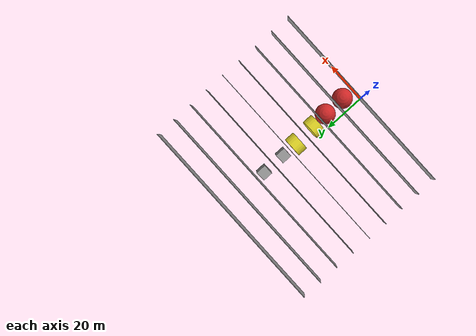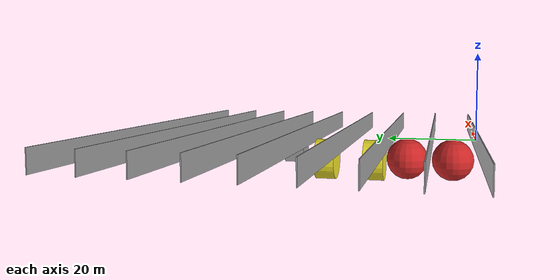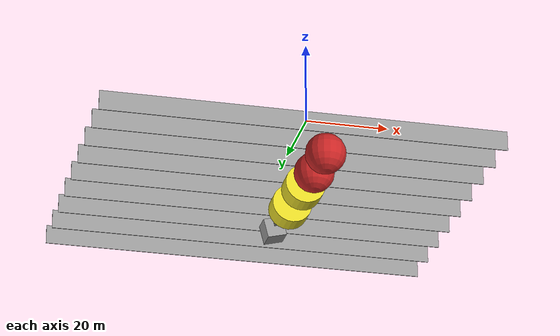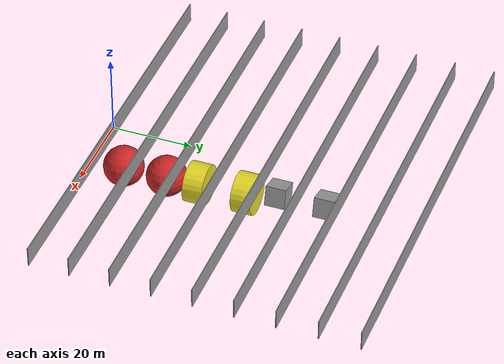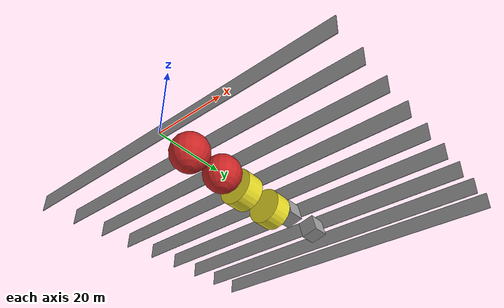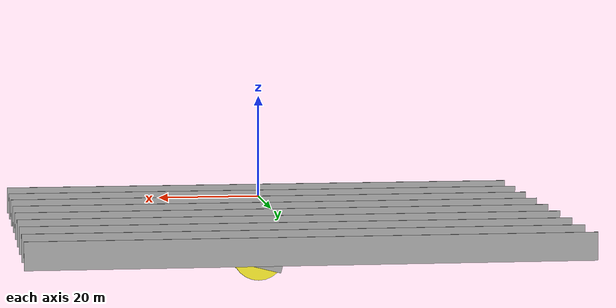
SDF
<?xml version='1.0'?>
<sdf version='1.7'>
  <model name='terrian'>
    <link name='link_1'>
      <pose>0 0 0 0 -0 0</pose>
      <gravity>1</gravity>
      <self_collide>0</self_collide>
      <kinematic>0</kinematic>
      <enable_wind>0</enable_wind>
      <inertial>
        <mass>1</mass>
        <pose>0 0 0 0 -0 0</pose>
        <inertia>
          <ixx>1</ixx>
          <ixy>0</ixy>
          <ixz>0</ixz>
          <iyy>1</iyy>
          <iyz>0</iyz>
          <izz>1</izz>
        </inertia>
      </inertial>
      <visual name='ModelPreview_1::link_1::visual_6'>
        <pose>0 60 0 0 -0 0</pose>
        <geometry>
          <box>
            <size>100 0.2 5</size>
          </box>
        </geometry>
        <material>
          <lighting>1</lighting>
          <script>
            <uri>file://media/materials/scripts/gazebo.material</uri>
            <name>Gazebo/Grey</name>
          </script>
          <shader type='pixel'>
            <normal_map>__default__</normal_map>
          </shader>
          <ambient>0.3 0.3 0.3 1</ambient>
          <diffuse>0.7 0.7 0.7 1</diffuse>
          <specular>0.01 0.01 0.01 1</specular>
          <emissive>0 0 0 1</emissive>
        </material>
        <transparency>0</transparency>
        <cast_shadows>1</cast_shadows>
      </visual>
      <visual name='ModelPreview_1::link_1::visual_4'>
        <pose>0 40 0 0 -0 0</pose>
        <geometry>
          <box>
            <size>100 0.2 5</size>
          </box>
        </geometry>
        <material>
          <lighting>1</lighting>
          <script>
            <uri>file://media/materials/scripts/gazebo.material</uri>
            <name>Gazebo/Grey</name>
          </script>
          <shader type='pixel'>
            <normal_map>__default__</normal_map>
          </shader>
          <ambient>0.3 0.3 0.3 1</ambient>
          <diffuse>0.7 0.7 0.7 1</diffuse>
          <specular>0.01 0.01 0.01 1</specular>
          <emissive>0 0 0 1</emissive>
        </material>
        <transparency>0</transparency>
        <cast_shadows>1</cast_shadows>
      </visual>
      <visual name='ModelPreview_1::link_1::visual_7'>
        <pose>0 70 0 0 -0 0</pose>
        <geometry>
          <box>
            <size>100 0.2 5</size>
          </box>
        </geometry>
        <material>
          <lighting>1</lighting>
          <script>
            <uri>file://media/materials/scripts/gazebo.material</uri>
            <name>Gazebo/Grey</name>
          </script>
          <shader type='pixel'>
            <normal_map>__default__</normal_map>
          </shader>
          <ambient>0.3 0.3 0.3 1</ambient>
          <diffuse>0.7 0.7 0.7 1</diffuse>
          <specular>0.01 0.01 0.01 1</specular>
          <emissive>0 0 0 1</emissive>
        </material>
        <transparency>0</transparency>
        <cast_shadows>1</cast_shadows>
      </visual>
      <visual name='visual'>
        <pose>0 0 0 0 -0 0</pose>
        <geometry>
          <box>
            <size>100 0.2 5</size>
          </box>
        </geometry>
        <material>
          <lighting>1</lighting>
          <script>
            <uri>file://media/materials/scripts/gazebo.material</uri>
            <name>Gazebo/Grey</name>
          </script>
          <shader type='pixel'>
            <normal_map>__default__</normal_map>
          </shader>
          <ambient>0.3 0.3 0.3 1</ambient>
          <diffuse>0.7 0.7 0.7 1</diffuse>
          <specular>0.01 0.01 0.01 1</specular>
          <emissive>0 0 0 1</emissive>
        </material>
        <transparency>0</transparency>
        <cast_shadows>1</cast_shadows>
      </visual>
      <visual name='ModelPreview_1::link_1::visual_5'>
        <pose>0 50 0 0 -0 0</pose>
        <geometry>
          <box>
            <size>100 0.2 5</size>
          </box>
        </geometry>
        <material>
          <lighting>1</lighting>
          <script>
            <uri>file://media/materials/scripts/gazebo.material</uri>
            <name>Gazebo/Grey</name>
          </script>
          <shader type='pixel'>
            <normal_map>__default__</normal_map>
          </shader>
          <ambient>0.3 0.3 0.3 1</ambient>
          <diffuse>0.7 0.7 0.7 1</diffuse>
          <specular>0.01 0.01 0.01 1</specular>
          <emissive>0 0 0 1</emissive>
        </material>
        <transparency>0</transparency>
        <cast_shadows>1</cast_shadows>
      </visual>
      <visual name='ModelPreview_1::link_1::visual_8'>
        <pose>0 80 0 0 -0 0</pose>
        <geometry>
          <box>
            <size>100 0.2 5</size>
          </box>
        </geometry>
        <material>
          <lighting>1</lighting>
          <script>
            <uri>file://media/materials/scripts/gazebo.material</uri>
            <name>Gazebo/Grey</name>
          </script>
          <shader type='pixel'>
            <normal_map>__default__</normal_map>
          </shader>
          <ambient>0.3 0.3 0.3 1</ambient>
          <diffuse>0.7 0.7 0.7 1</diffuse>
          <specular>0.01 0.01 0.01 1</specular>
          <emissive>0 0 0 1</emissive>
        </material>
        <transparency>0</transparency>
        <cast_shadows>1</cast_shadows>
      </visual>
      <visual name='ModelPreview_1::link_1::visual_3'>
        <pose>0 30 0 0 -0 0</pose>
        <geometry>
          <box>
            <size>100 0.2 5</size>
          </box>
        </geometry>
        <material>
          <lighting>1</lighting>
          <script>
            <uri>file://media/materials/scripts/gazebo.material</uri>
            <name>Gazebo/Grey</name>
          </script>
          <shader type='pixel'>
            <normal_map>__default__</normal_map>
          </shader>
          <ambient>0.3 0.3 0.3 1</ambient>
          <diffuse>0.7 0.7 0.7 1</diffuse>
          <specular>0.01 0.01 0.01 1</specular>
          <emissive>0 0 0 1</emissive>
        </material>
        <transparency>0</transparency>
        <cast_shadows>1</cast_shadows>
      </visual>
      <visual name='ModelPreview_1::link_1::visual_2'>
        <pose>0 20 0 0 -0 0</pose>
        <geometry>
          <box>
            <size>100 0.2 5</size>
          </box>
        </geometry>
        <material>
          <lighting>1</lighting>
          <script>
            <uri>file://media/materials/scripts/gazebo.material</uri>
            <name>Gazebo/Grey</name>
          </script>
          <shader type='pixel'>
            <normal_map>__default__</normal_map>
          </shader>
          <ambient>0.3 0.3 0.3 1</ambient>
          <diffuse>0.7 0.7 0.7 1</diffuse>
          <specular>0.01 0.01 0.01 1</specular>
          <emissive>0 0 0 1</emissive>
        </material>
        <transparency>0</transparency>
        <cast_shadows>1</cast_shadows>
      </visual>
      <visual name='ModelPreview_1::link_1::visual_1'>
        <pose>0 10 0 0 -0 0</pose>
        <geometry>
          <box>
            <size>100 0.2 5</size>
          </box>
        </geometry>
        <material>
          <lighting>1</lighting>
          <script>
            <uri>file://media/materials/scripts/gazebo.material</uri>
            <name>Gazebo/Grey</name>
          </script>
          <shader type='pixel'>
            <normal_map>__default__</normal_map>
          </shader>
          <ambient>0.3 0.3 0.3 1</ambient>
          <diffuse>0.7 0.7 0.7 1</diffuse>
          <specular>0.01 0.01 0.01 1</specular>
          <emissive>0 0 0 1</emissive>
        </material>
        <transparency>0</transparency>
        <cast_shadows>1</cast_shadows>
      </visual>
      <collision name='collision_6'>
        <laser_retro>0</laser_retro>
        <max_contacts>10</max_contacts>
        <pose>0 60 0 0 -0 0</pose>
        <geometry>
          <box>
            <size>100 0.2 5</size>
          </box>
        </geometry>
        <surface>
          <friction>
            <ode>
              <mu>1</mu>
              <mu2>1</mu2>
              <fdir1>0 0 0</fdir1>
              <slip1>0</slip1>
              <slip2>0</slip2>
            </ode>
            <torsional>
              <coefficient>1</coefficient>
              <patch_radius>0</patch_radius>
              <surface_radius>0</surface_radius>
              <use_patch_radius>1</use_patch_radius>
              <ode>
                <slip>0</slip>
              </ode>
            </torsional>
          </friction>
          <bounce>
            <restitution_coefficient>0</restitution_coefficient>
            <threshold>1e+06</threshold>
          </bounce>
          <contact>
            <collide_without_contact>0</collide_without_contact>
            <collide_without_contact_bitmask>1</collide_without_contact_bitmask>
            <collide_bitmask>1</collide_bitmask>
            <ode>
              <soft_cfm>0</soft_cfm>
              <soft_erp>0.2</soft_erp>
              <kp>1e+13</kp>
              <kd>1</kd>
              <max_vel>0.01</max_vel>
              <min_depth>0</min_depth>
            </ode>
            <bullet>
              <split_impulse>1</split_impulse>
              <split_impulse_penetration_threshold>-0.01</split_impulse_penetration_threshold>
              <soft_cfm>0</soft_cfm>
              <soft_erp>0.2</soft_erp>
              <kp>1e+13</kp>
              <kd>1</kd>
            </bullet>
          </contact>
        </surface>
      </collision>
      <collision name='collision_1'>
        <laser_retro>0</laser_retro>
        <max_contacts>10</max_contacts>
        <pose>0 10 0 0 -0 0</pose>
        <geometry>
          <box>
            <size>100 0.2 5</size>
          </box>
        </geometry>
        <surface>
          <friction>
            <ode>
              <mu>1</mu>
              <mu2>1</mu2>
              <fdir1>0 0 0</fdir1>
              <slip1>0</slip1>
              <slip2>0</slip2>
            </ode>
            <torsional>
              <coefficient>1</coefficient>
              <patch_radius>0</patch_radius>
              <surface_radius>0</surface_radius>
              <use_patch_radius>1</use_patch_radius>
              <ode>
                <slip>0</slip>
              </ode>
            </torsional>
          </friction>
          <bounce>
            <restitution_coefficient>0</restitution_coefficient>
            <threshold>1e+06</threshold>
          </bounce>
          <contact>
            <collide_without_contact>0</collide_without_contact>
            <collide_without_contact_bitmask>1</collide_without_contact_bitmask>
            <collide_bitmask>1</collide_bitmask>
            <ode>
              <soft_cfm>0</soft_cfm>
              <soft_erp>0.2</soft_erp>
              <kp>1e+13</kp>
              <kd>1</kd>
              <max_vel>0.01</max_vel>
              <min_depth>0</min_depth>
            </ode>
            <bullet>
              <split_impulse>1</split_impulse>
              <split_impulse_penetration_threshold>-0.01</split_impulse_penetration_threshold>
              <soft_cfm>0</soft_cfm>
              <soft_erp>0.2</soft_erp>
              <kp>1e+13</kp>
              <kd>1</kd>
            </bullet>
          </contact>
        </surface>
      </collision>
      <collision name='collision_3'>
        <laser_retro>0</laser_retro>
        <max_contacts>10</max_contacts>
        <pose>0 30 0 0 -0 0</pose>
        <geometry>
          <box>
            <size>100 0.2 5</size>
          </box>
        </geometry>
        <surface>
          <friction>
            <ode>
              <mu>1</mu>
              <mu2>1</mu2>
              <fdir1>0 0 0</fdir1>
              <slip1>0</slip1>
              <slip2>0</slip2>
            </ode>
            <torsional>
              <coefficient>1</coefficient>
              <patch_radius>0</patch_radius>
              <surface_radius>0</surface_radius>
              <use_patch_radius>1</use_patch_radius>
              <ode>
                <slip>0</slip>
              </ode>
            </torsional>
          </friction>
          <bounce>
            <restitution_coefficient>0</restitution_coefficient>
            <threshold>1e+06</threshold>
          </bounce>
          <contact>
            <collide_without_contact>0</collide_without_contact>
            <collide_without_contact_bitmask>1</collide_without_contact_bitmask>
            <collide_bitmask>1</collide_bitmask>
            <ode>
              <soft_cfm>0</soft_cfm>
              <soft_erp>0.2</soft_erp>
              <kp>1e+13</kp>
              <kd>1</kd>
              <max_vel>0.01</max_vel>
              <min_depth>0</min_depth>
            </ode>
            <bullet>
              <split_impulse>1</split_impulse>
              <split_impulse_penetration_threshold>-0.01</split_impulse_penetration_threshold>
              <soft_cfm>0</soft_cfm>
              <soft_erp>0.2</soft_erp>
              <kp>1e+13</kp>
              <kd>1</kd>
            </bullet>
          </contact>
        </surface>
      </collision>
      <collision name='collision_2'>
        <laser_retro>0</laser_retro>
        <max_contacts>10</max_contacts>
        <pose>0 20 0 0 -0 0</pose>
        <geometry>
          <box>
            <size>100 0.2 5</size>
          </box>
        </geometry>
        <surface>
          <friction>
            <ode>
              <mu>1</mu>
              <mu2>1</mu2>
              <fdir1>0 0 0</fdir1>
              <slip1>0</slip1>
              <slip2>0</slip2>
            </ode>
            <torsional>
              <coefficient>1</coefficient>
              <patch_radius>0</patch_radius>
              <surface_radius>0</surface_radius>
              <use_patch_radius>1</use_patch_radius>
              <ode>
                <slip>0</slip>
              </ode>
            </torsional>
          </friction>
          <bounce>
            <restitution_coefficient>0</restitution_coefficient>
            <threshold>1e+06</threshold>
          </bounce>
          <contact>
            <collide_without_contact>0</collide_without_contact>
            <collide_without_contact_bitmask>1</collide_without_contact_bitmask>
            <collide_bitmask>1</collide_bitmask>
            <ode>
              <soft_cfm>0</soft_cfm>
              <soft_erp>0.2</soft_erp>
              <kp>1e+13</kp>
              <kd>1</kd>
              <max_vel>0.01</max_vel>
              <min_depth>0</min_depth>
            </ode>
            <bullet>
              <split_impulse>1</split_impulse>
              <split_impulse_penetration_threshold>-0.01</split_impulse_penetration_threshold>
              <soft_cfm>0</soft_cfm>
              <soft_erp>0.2</soft_erp>
              <kp>1e+13</kp>
              <kd>1</kd>
            </bullet>
          </contact>
        </surface>
      </collision>
      <collision name='collision_4'>
        <laser_retro>0</laser_retro>
        <max_contacts>10</max_contacts>
        <pose>0 40 0 0 -0 0</pose>
        <geometry>
          <box>
            <size>100 0.2 5</size>
          </box>
        </geometry>
        <surface>
          <friction>
            <ode>
              <mu>1</mu>
              <mu2>1</mu2>
              <fdir1>0 0 0</fdir1>
              <slip1>0</slip1>
              <slip2>0</slip2>
            </ode>
            <torsional>
              <coefficient>1</coefficient>
              <patch_radius>0</patch_radius>
              <surface_radius>0</surface_radius>
              <use_patch_radius>1</use_patch_radius>
              <ode>
                <slip>0</slip>
              </ode>
            </torsional>
          </friction>
          <bounce>
            <restitution_coefficient>0</restitution_coefficient>
            <threshold>1e+06</threshold>
          </bounce>
          <contact>
            <collide_without_contact>0</collide_without_contact>
            <collide_without_contact_bitmask>1</collide_without_contact_bitmask>
            <collide_bitmask>1</collide_bitmask>
            <ode>
              <soft_cfm>0</soft_cfm>
              <soft_erp>0.2</soft_erp>
              <kp>1e+13</kp>
              <kd>1</kd>
              <max_vel>0.01</max_vel>
              <min_depth>0</min_depth>
            </ode>
            <bullet>
              <split_impulse>1</split_impulse>
              <split_impulse_penetration_threshold>-0.01</split_impulse_penetration_threshold>
              <soft_cfm>0</soft_cfm>
              <soft_erp>0.2</soft_erp>
              <kp>1e+13</kp>
              <kd>1</kd>
            </bullet>
          </contact>
        </surface>
      </collision>
      <collision name='collision_7'>
        <laser_retro>0</laser_retro>
        <max_contacts>10</max_contacts>
        <pose>0 70 0 0 -0 0</pose>
        <geometry>
          <box>
            <size>100 0.2 5</size>
          </box>
        </geometry>
        <surface>
          <friction>
            <ode>
              <mu>1</mu>
              <mu2>1</mu2>
              <fdir1>0 0 0</fdir1>
              <slip1>0</slip1>
              <slip2>0</slip2>
            </ode>
            <torsional>
              <coefficient>1</coefficient>
              <patch_radius>0</patch_radius>
              <surface_radius>0</surface_radius>
              <use_patch_radius>1</use_patch_radius>
              <ode>
                <slip>0</slip>
              </ode>
            </torsional>
          </friction>
          <bounce>
            <restitution_coefficient>0</restitution_coefficient>
            <threshold>1e+06</threshold>
          </bounce>
          <contact>
            <collide_without_contact>0</collide_without_contact>
            <collide_without_contact_bitmask>1</collide_without_contact_bitmask>
            <collide_bitmask>1</collide_bitmask>
            <ode>
              <soft_cfm>0</soft_cfm>
              <soft_erp>0.2</soft_erp>
              <kp>1e+13</kp>
              <kd>1</kd>
              <max_vel>0.01</max_vel>
              <min_depth>0</min_depth>
            </ode>
            <bullet>
              <split_impulse>1</split_impulse>
              <split_impulse_penetration_threshold>-0.01</split_impulse_penetration_threshold>
              <soft_cfm>0</soft_cfm>
              <soft_erp>0.2</soft_erp>
              <kp>1e+13</kp>
              <kd>1</kd>
            </bullet>
          </contact>
        </surface>
      </collision>
      <collision name='collision'>
        <laser_retro>0</laser_retro>
        <max_contacts>10</max_contacts>
        <pose>0 0 0 0 -0 0</pose>
        <geometry>
          <box>
            <size>100 0.2 5</size>
          </box>
        </geometry>
        <surface>
          <friction>
            <ode>
              <mu>1</mu>
              <mu2>1</mu2>
              <fdir1>0 0 0</fdir1>
              <slip1>0</slip1>
              <slip2>0</slip2>
            </ode>
            <torsional>
              <coefficient>1</coefficient>
              <patch_radius>0</patch_radius>
              <surface_radius>0</surface_radius>
              <use_patch_radius>1</use_patch_radius>
              <ode>
                <slip>0</slip>
              </ode>
            </torsional>
          </friction>
          <bounce>
            <restitution_coefficient>0</restitution_coefficient>
            <threshold>1e+06</threshold>
          </bounce>
          <contact>
            <collide_without_contact>0</collide_without_contact>
            <collide_without_contact_bitmask>1</collide_without_contact_bitmask>
            <collide_bitmask>1</collide_bitmask>
            <ode>
              <soft_cfm>0</soft_cfm>
              <soft_erp>0.2</soft_erp>
              <kp>1e+13</kp>
              <kd>1</kd>
              <max_vel>0.01</max_vel>
              <min_depth>0</min_depth>
            </ode>
            <bullet>
              <split_impulse>1</split_impulse>
              <split_impulse_penetration_threshold>-0.01</split_impulse_penetration_threshold>
              <soft_cfm>0</soft_cfm>
              <soft_erp>0.2</soft_erp>
              <kp>1e+13</kp>
              <kd>1</kd>
            </bullet>
          </contact>
        </surface>
      </collision>
      <collision name='collision_5'>
        <laser_retro>0</laser_retro>
        <max_contacts>10</max_contacts>
        <pose>0 50 0 0 -0 0</pose>
        <geometry>
          <box>
            <size>100 0.2 5</size>
          </box>
        </geometry>
        <surface>
          <friction>
            <ode>
              <mu>1</mu>
              <mu2>1</mu2>
              <fdir1>0 0 0</fdir1>
              <slip1>0</slip1>
              <slip2>0</slip2>
            </ode>
            <torsional>
              <coefficient>1</coefficient>
              <patch_radius>0</patch_radius>
              <surface_radius>0</surface_radius>
              <use_patch_radius>1</use_patch_radius>
              <ode>
                <slip>0</slip>
              </ode>
            </torsional>
          </friction>
          <bounce>
            <restitution_coefficient>0</restitution_coefficient>
            <threshold>1e+06</threshold>
          </bounce>
          <contact>
            <collide_without_contact>0</collide_without_contact>
            <collide_without_contact_bitmask>1</collide_without_contact_bitmask>
            <collide_bitmask>1</collide_bitmask>
            <ode>
              <soft_cfm>0</soft_cfm>
              <soft_erp>0.2</soft_erp>
              <kp>1e+13</kp>
              <kd>1</kd>
              <max_vel>0.01</max_vel>
              <min_depth>0</min_depth>
            </ode>
            <bullet>
              <split_impulse>1</split_impulse>
              <split_impulse_penetration_threshold>-0.01</split_impulse_penetration_threshold>
              <soft_cfm>0</soft_cfm>
              <soft_erp>0.2</soft_erp>
              <kp>1e+13</kp>
              <kd>1</kd>
            </bullet>
          </contact>
        </surface>
      </collision>
      <collision name='collision_8'>
        <laser_retro>0</laser_retro>
        <max_contacts>10</max_contacts>
        <pose>0 80 0 0 -0 0</pose>
        <geometry>
          <box>
            <size>100 0.2 5</size>
          </box>
        </geometry>
        <surface>
          <friction>
            <ode>
              <mu>1</mu>
              <mu2>1</mu2>
              <fdir1>0 0 0</fdir1>
              <slip1>0</slip1>
              <slip2>0</slip2>
            </ode>
            <torsional>
              <coefficient>1</coefficient>
              <patch_radius>0</patch_radius>
              <surface_radius>0</surface_radius>
              <use_patch_radius>1</use_patch_radius>
              <ode>
                <slip>0</slip>
              </ode>
            </torsional>
          </friction>
          <bounce>
            <restitution_coefficient>0</restitution_coefficient>
            <threshold>1e+06</threshold>
          </bounce>
          <contact>
            <collide_without_contact>0</collide_without_contact>
            <collide_without_contact_bitmask>1</collide_without_contact_bitmask>
            <collide_bitmask>1</collide_bitmask>
            <ode>
              <soft_cfm>0</soft_cfm>
              <soft_erp>0.2</soft_erp>
              <kp>1e+13</kp>
              <kd>1</kd>
              <max_vel>0.01</max_vel>
              <min_depth>0</min_depth>
            </ode>
            <bullet>
              <split_impulse>1</split_impulse>
              <split_impulse_penetration_threshold>-0.01</split_impulse_penetration_threshold>
              <soft_cfm>0</soft_cfm>
              <soft_erp>0.2</soft_erp>
              <kp>1e+13</kp>
              <kd>1</kd>
            </bullet>
          </contact>
        </surface>
      </collision>
    </link>
    <link name='link_1_0_clone'>
      <pose>5.84539 16 -5.67481 0 -0 0</pose>
      <gravity>1</gravity>
      <self_collide>0</self_collide>
      <kinematic>0</kinematic>
      <enable_wind>0</enable_wind>
      <inertial>
        <mass>1</mass>
        <pose>0 0 0 0 -0 0</pose>
        <inertia>
          <ixx>1</ixx>
          <ixy>0</ixy>
          <ixz>0</ixz>
          <iyy>1</iyy>
          <iyz>0</iyz>
          <izz>1</izz>
        </inertia>
      </inertial>
      <visual name='visual'>
        <pose>0 0 0 0 -0 0</pose>
        <geometry>
          <sphere>
            <radius>5</radius>
          </sphere>
        </geometry>
        <material>
          <lighting>1</lighting>
          <script>
            <uri>file://media/materials/scripts/gazebo.material</uri>
            <name>Gazebo/Red</name>
          </script>
          <shader type='pixel'>
            <normal_map>__default__</normal_map>
          </shader>
          <ambient>0.3 0.3 0.3 1</ambient>
          <diffuse>0.7 0.7 0.7 1</diffuse>
          <specular>0.01 0.01 0.01 1</specular>
          <emissive>0 0 0 1</emissive>
        </material>
        <transparency>0</transparency>
        <cast_shadows>1</cast_shadows>
      </visual>
      <collision name='collision'>
        <laser_retro>0</laser_retro>
        <max_contacts>10</max_contacts>
        <pose>0 0 0 0 -0 0</pose>
        <geometry>
          <sphere>
            <radius>5</radius>
          </sphere>
        </geometry>
        <surface>
          <friction>
            <ode>
              <mu>1</mu>
              <mu2>1</mu2>
              <fdir1>0 0 0</fdir1>
              <slip1>0</slip1>
              <slip2>0</slip2>
            </ode>
            <torsional>
              <coefficient>1</coefficient>
              <patch_radius>0</patch_radius>
              <surface_radius>0</surface_radius>
              <use_patch_radius>1</use_patch_radius>
              <ode>
                <slip>0</slip>
              </ode>
            </torsional>
          </friction>
          <bounce>
            <restitution_coefficient>0</restitution_coefficient>
            <threshold>1e+06</threshold>
          </bounce>
          <contact>
            <collide_without_contact>0</collide_without_contact>
            <collide_without_contact_bitmask>1</collide_without_contact_bitmask>
            <collide_bitmask>1</collide_bitmask>
            <ode>
              <soft_cfm>0</soft_cfm>
              <soft_erp>0.2</soft_erp>
              <kp>1e+13</kp>
              <kd>1</kd>
              <max_vel>0.01</max_vel>
              <min_depth>0</min_depth>
            </ode>
            <bullet>
              <split_impulse>1</split_impulse>
              <split_impulse_penetration_threshold>-0.01</split_impulse_penetration_threshold>
              <soft_cfm>0</soft_cfm>
              <soft_erp>0.2</soft_erp>
              <kp>1e+13</kp>
              <kd>1</kd>
            </bullet>
          </contact>
        </surface>
      </collision>
    </link>
    <link name='link_1_0_clone_clone'>
      <pose>5.93853 5 -5.67481 0 -0 0</pose>
      <gravity>1</gravity>
      <self_collide>0</self_collide>
      <kinematic>0</kinematic>
      <enable_wind>0</enable_wind>
      <inertial>
        <mass>1</mass>
        <pose>0 0 0 0 -0 0</pose>
        <inertia>
          <ixx>1</ixx>
          <ixy>0</ixy>
          <ixz>0</ixz>
          <iyy>1</iyy>
          <iyz>0</iyz>
          <izz>1</izz>
        </inertia>
      </inertial>
      <visual name='visual'>
        <pose>0 0 0 0 -0 0</pose>
        <geometry>
          <sphere>
            <radius>5</radius>
          </sphere>
        </geometry>
        <material>
          <lighting>1</lighting>
          <script>
            <uri>file://media/materials/scripts/gazebo.material</uri>
            <name>Gazebo/Red</name>
          </script>
          <shader type='pixel'>
            <normal_map>__default__</normal_map>
          </shader>
          <ambient>0.3 0.3 0.3 1</ambient>
          <diffuse>0.7 0.7 0.7 1</diffuse>
          <specular>0.01 0.01 0.01 1</specular>
          <emissive>0 0 0 1</emissive>
        </material>
        <transparency>0</transparency>
        <cast_shadows>1</cast_shadows>
      </visual>
      <collision name='collision'>
        <laser_retro>0</laser_retro>
        <max_contacts>10</max_contacts>
        <pose>0 0 0 0 -0 0</pose>
        <geometry>
          <sphere>
            <radius>5</radius>
          </sphere>
        </geometry>
        <surface>
          <friction>
            <ode>
              <mu>1</mu>
              <mu2>1</mu2>
              <fdir1>0 0 0</fdir1>
              <slip1>0</slip1>
              <slip2>0</slip2>
            </ode>
            <torsional>
              <coefficient>1</coefficient>
              <patch_radius>0</patch_radius>
              <surface_radius>0</surface_radius>
              <use_patch_radius>1</use_patch_radius>
              <ode>
                <slip>0</slip>
              </ode>
            </torsional>
          </friction>
          <bounce>
            <restitution_coefficient>0</restitution_coefficient>
            <threshold>1e+06</threshold>
          </bounce>
          <contact>
            <collide_without_contact>0</collide_without_contact>
            <collide_without_contact_bitmask>1</collide_without_contact_bitmask>
            <collide_bitmask>1</collide_bitmask>
            <ode>
              <soft_cfm>0</soft_cfm>
              <soft_erp>0.2</soft_erp>
              <kp>1e+13</kp>
              <kd>1</kd>
              <max_vel>0.01</max_vel>
              <min_depth>0</min_depth>
            </ode>
            <bullet>
              <split_impulse>1</split_impulse>
              <split_impulse_penetration_threshold>-0.01</split_impulse_penetration_threshold>
              <soft_cfm>0</soft_cfm>
              <soft_erp>0.2</soft_erp>
              <kp>1e+13</kp>
              <kd>1</kd>
            </bullet>
          </contact>
        </surface>
      </collision>
    </link>
    <link name='link_2_clone'>
      <pose>4.60286 36 -6.14881 1.5707 -0 0</pose>
      <gravity>1</gravity>
      <self_collide>0</self_collide>
      <kinematic>0</kinematic>
      <enable_wind>0</enable_wind>
      <inertial>
        <mass>1</mass>
        <pose>0 0 0 0 -0 0</pose>
        <inertia>
          <ixx>1</ixx>
          <ixy>0</ixy>
          <ixz>0</ixz>
          <iyy>1</iyy>
          <iyz>0</iyz>
          <izz>1</izz>
        </inertia>
      </inertial>
      <visual name='visual'>
        <pose>0 0 0 0 -0 0</pose>
        <geometry>
          <cylinder>
            <radius>5</radius>
            <length>5</length>
          </cylinder>
        </geometry>
        <material>
          <lighting>1</lighting>
          <script>
            <uri>file://media/materials/scripts/gazebo.material</uri>
            <name>Gazebo/Yellow</name>
          </script>
          <shader type='pixel'>
            <normal_map>__default__</normal_map>
          </shader>
          <ambient>0.3 0.3 0.3 1</ambient>
          <diffuse>0.7 0.7 0.7 1</diffuse>
          <specular>0.01 0.01 0.01 1</specular>
          <emissive>0 0 0 1</emissive>
        </material>
        <transparency>0</transparency>
        <cast_shadows>1</cast_shadows>
      </visual>
      <collision name='collision'>
        <laser_retro>0</laser_retro>
        <max_contacts>10</max_contacts>
        <pose>0 0 0 0 -0 0</pose>
        <geometry>
          <cylinder>
            <radius>5</radius>
            <length>5</length>
          </cylinder>
        </geometry>
        <surface>
          <friction>
            <ode>
              <mu>1</mu>
              <mu2>1</mu2>
              <fdir1>0 0 0</fdir1>
              <slip1>0</slip1>
              <slip2>0</slip2>
            </ode>
            <torsional>
              <coefficient>1</coefficient>
              <patch_radius>0</patch_radius>
              <surface_radius>0</surface_radius>
              <use_patch_radius>1</use_patch_radius>
              <ode>
                <slip>0</slip>
              </ode>
            </torsional>
          </friction>
          <bounce>
            <restitution_coefficient>0</restitution_coefficient>
            <threshold>1e+06</threshold>
          </bounce>
          <contact>
            <collide_without_contact>0</collide_without_contact>
            <collide_without_contact_bitmask>1</collide_without_contact_bitmask>
            <collide_bitmask>1</collide_bitmask>
            <ode>
              <soft_cfm>0</soft_cfm>
              <soft_erp>0.2</soft_erp>
              <kp>1e+13</kp>
              <kd>1</kd>
              <max_vel>0.01</max_vel>
              <min_depth>0</min_depth>
            </ode>
            <bullet>
              <split_impulse>1</split_impulse>
              <split_impulse_penetration_threshold>-0.01</split_impulse_penetration_threshold>
              <soft_cfm>0</soft_cfm>
              <soft_erp>0.2</soft_erp>
              <kp>1e+13</kp>
              <kd>1</kd>
            </bullet>
          </contact>
        </surface>
      </collision>
    </link>
    <link name='link_2_clone_clone'>
      <pose>5.0789 24 -6.14881 1.5707 -0 0</pose>
      <gravity>1</gravity>
      <self_collide>0</self_collide>
      <kinematic>0</kinematic>
      <enable_wind>0</enable_wind>
      <inertial>
        <mass>1</mass>
        <pose>0 0 0 0 -0 0</pose>
        <inertia>
          <ixx>1</ixx>
          <ixy>0</ixy>
          <ixz>0</ixz>
          <iyy>1</iyy>
          <iyz>0</iyz>
          <izz>1</izz>
        </inertia>
      </inertial>
      <visual name='visual'>
        <pose>0 0 0 0 -0 0</pose>
        <geometry>
          <cylinder>
            <radius>5</radius>
            <length>5</length>
          </cylinder>
        </geometry>
        <material>
          <lighting>1</lighting>
          <script>
            <uri>file://media/materials/scripts/gazebo.material</uri>
            <name>Gazebo/Yellow</name>
          </script>
          <shader type='pixel'>
            <normal_map>__default__</normal_map>
          </shader>
          <ambient>0.3 0.3 0.3 1</ambient>
          <diffuse>0.7 0.7 0.7 1</diffuse>
          <specular>0.01 0.01 0.01 1</specular>
          <emissive>0 0 0 1</emissive>
        </material>
        <transparency>0</transparency>
        <cast_shadows>1</cast_shadows>
      </visual>
      <collision name='collision'>
        <laser_retro>0</laser_retro>
        <max_contacts>10</max_contacts>
        <pose>0 0 0 0 -0 0</pose>
        <geometry>
          <cylinder>
            <radius>5</radius>
            <length>5</length>
          </cylinder>
        </geometry>
        <surface>
          <friction>
            <ode>
              <mu>1</mu>
              <mu2>1</mu2>
              <fdir1>0 0 0</fdir1>
              <slip1>0</slip1>
              <slip2>0</slip2>
            </ode>
            <torsional>
              <coefficient>1</coefficient>
              <patch_radius>0</patch_radius>
              <surface_radius>0</surface_radius>
              <use_patch_radius>1</use_patch_radius>
              <ode>
                <slip>0</slip>
              </ode>
            </torsional>
          </friction>
          <bounce>
            <restitution_coefficient>0</restitution_coefficient>
            <threshold>1e+06</threshold>
          </bounce>
          <contact>
            <collide_without_contact>0</collide_without_contact>
            <collide_without_contact_bitmask>1</collide_without_contact_bitmask>
            <collide_bitmask>1</collide_bitmask>
            <ode>
              <soft_cfm>0</soft_cfm>
              <soft_erp>0.2</soft_erp>
              <kp>1e+13</kp>
              <kd>1</kd>
              <max_vel>0.01</max_vel>
              <min_depth>0</min_depth>
            </ode>
            <bullet>
              <split_impulse>1</split_impulse>
              <split_impulse_penetration_threshold>-0.01</split_impulse_penetration_threshold>
              <soft_cfm>0</soft_cfm>
              <soft_erp>0.2</soft_erp>
              <kp>1e+13</kp>
              <kd>1</kd>
            </bullet>
          </contact>
        </surface>
      </collision>
    </link>
    <link name='link_3'>
      <pose>4.84693 44 -3.87559 0 -0.250836 0</pose>
      <gravity>1</gravity>
      <self_collide>0</self_collide>
      <kinematic>0</kinematic>
      <enable_wind>0</enable_wind>
      <inertial>
        <mass>1</mass>
        <pose>0 0 0 0 -0 0</pose>
        <inertia>
          <ixx>1</ixx>
          <ixy>0</ixy>
          <ixz>0</ixz>
          <iyy>1</iyy>
          <iyz>0</iyz>
          <izz>1</izz>
        </inertia>
      </inertial>
      <visual name='visual'>
        <pose>0 0 0 0 -0 0</pose>
        <geometry>
          <box>
            <size>5 5 5</size>
          </box>
        </geometry>
        <material>
          <lighting>1</lighting>
          <script>
            <uri>file://media/materials/scripts/gazebo.material</uri>
            <name>Gazebo/Grey</name>
          </script>
          <shader type='pixel'>
            <normal_map>__default__</normal_map>
          </shader>
          <ambient>0.3 0.3 0.3 1</ambient>
          <diffuse>0.7 0.7 0.7 1</diffuse>
          <specular>0.01 0.01 0.01 1</specular>
          <emissive>0 0 0 1</emissive>
        </material>
        <transparency>0</transparency>
        <cast_shadows>1</cast_shadows>
      </visual>
      <collision name='collision'>
        <laser_retro>0</laser_retro>
        <max_contacts>10</max_contacts>
        <pose>0 0 0 0 -0 0</pose>
        <geometry>
          <box>
            <size>5 5 5</size>
          </box>
        </geometry>
        <surface>
          <friction>
            <ode>
              <mu>1</mu>
              <mu2>1</mu2>
              <fdir1>0 0 0</fdir1>
              <slip1>0</slip1>
              <slip2>0</slip2>
            </ode>
            <torsional>
              <coefficient>1</coefficient>
              <patch_radius>0</patch_radius>
              <surface_radius>0</surface_radius>
              <use_patch_radius>1</use_patch_radius>
              <ode>
                <slip>0</slip>
              </ode>
            </torsional>
          </friction>
          <bounce>
            <restitution_coefficient>0</restitution_coefficient>
            <threshold>1e+06</threshold>
          </bounce>
          <contact>
            <collide_without_contact>0</collide_without_contact>
            <collide_without_contact_bitmask>1</collide_without_contact_bitmask>
            <collide_bitmask>1</collide_bitmask>
            <ode>
              <soft_cfm>0</soft_cfm>
              <soft_erp>0.2</soft_erp>
              <kp>1e+13</kp>
              <kd>1</kd>
              <max_vel>0.01</max_vel>
              <min_depth>0</min_depth>
            </ode>
            <bullet>
              <split_impulse>1</split_impulse>
              <split_impulse_penetration_threshold>-0.01</split_impulse_penetration_threshold>
              <soft_cfm>0</soft_cfm>
              <soft_erp>0.2</soft_erp>
              <kp>1e+13</kp>
              <kd>1</kd>
            </bullet>
          </contact>
        </surface>
      </collision>
    </link>
    <link name='link_3_clone'>
      <pose>4.8631 56 -3.87559 0 -0.250836 0</pose>
      <gravity>1</gravity>
      <self_collide>0</self_collide>
      <kinematic>0</kinematic>
      <enable_wind>0</enable_wind>
      <inertial>
        <mass>1</mass>
        <pose>0 0 0 0 -0 0</pose>
        <inertia>
          <ixx>1</ixx>
          <ixy>0</ixy>
          <ixz>0</ixz>
          <iyy>1</iyy>
          <iyz>0</iyz>
          <izz>1</izz>
        </inertia>
      </inertial>
      <visual name='visual'>
        <pose>0 0 0 0 -0 0</pose>
        <geometry>
          <box>
            <size>5 5 5</size>
          </box>
        </geometry>
        <material>
          <lighting>1</lighting>
          <script>
            <uri>file://media/materials/scripts/gazebo.material</uri>
            <name>Gazebo/Grey</name>
          </script>
          <shader type='pixel'>
            <normal_map>__default__</normal_map>
          </shader>
          <ambient>0.3 0.3 0.3 1</ambient>
          <diffuse>0.7 0.7 0.7 1</diffuse>
          <specular>0.01 0.01 0.01 1</specular>
          <emissive>0 0 0 1</emissive>
        </material>
        <transparency>0</transparency>
        <cast_shadows>1</cast_shadows>
      </visual>
      <collision name='collision'>
        <laser_retro>0</laser_retro>
        <max_contacts>10</max_contacts>
        <pose>0 0 0 0 -0 0</pose>
        <geometry>
          <box>
            <size>5 5 5</size>
          </box>
        </geometry>
        <surface>
          <friction>
            <ode>
              <mu>1</mu>
              <mu2>1</mu2>
              <fdir1>0 0 0</fdir1>
              <slip1>0</slip1>
              <slip2>0</slip2>
            </ode>
            <torsional>
              <coefficient>1</coefficient>
              <patch_radius>0</patch_radius>
              <surface_radius>0</surface_radius>
              <use_patch_radius>1</use_patch_radius>
              <ode>
                <slip>0</slip>
              </ode>
            </torsional>
          </friction>
          <bounce>
            <restitution_coefficient>0</restitution_coefficient>
            <threshold>1e+06</threshold>
          </bounce>
          <contact>
            <collide_without_contact>0</collide_without_contact>
            <collide_without_contact_bitmask>1</collide_without_contact_bitmask>
            <collide_bitmask>1</collide_bitmask>
            <ode>
              <soft_cfm>0</soft_cfm>
              <soft_erp>0.2</soft_erp>
              <kp>1e+13</kp>
              <kd>1</kd>
              <max_vel>0.01</max_vel>
              <min_depth>0</min_depth>
            </ode>
            <bullet>
              <split_impulse>1</split_impulse>
              <split_impulse_penetration_threshold>-0.01</split_impulse_penetration_threshold>
              <soft_cfm>0</soft_cfm>
              <soft_erp>0.2</soft_erp>
              <kp>1e+13</kp>
              <kd>1</kd>
            </bullet>
          </contact>
        </surface>
      </collision>
    </link>
    <static>1</static>
    <allow_auto_disable>1</allow_auto_disable>
  </model>
</sdf>
